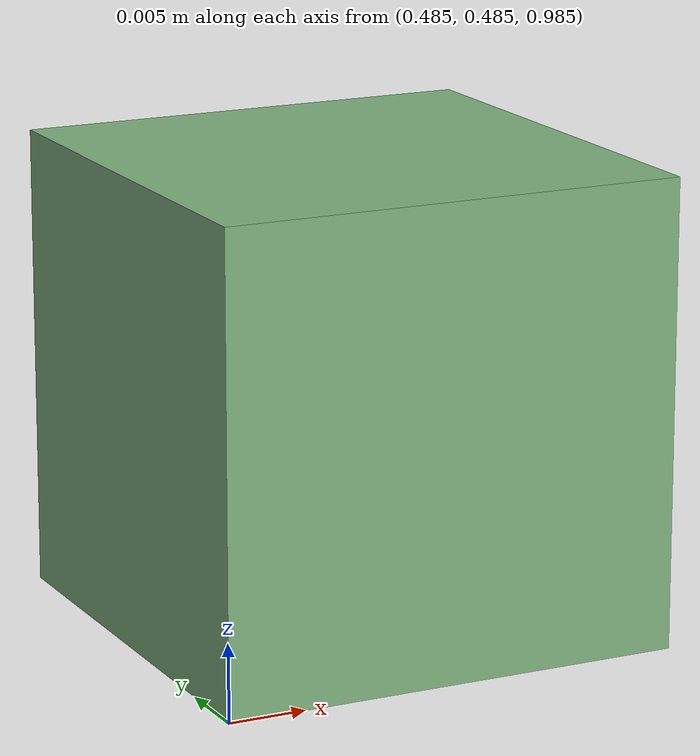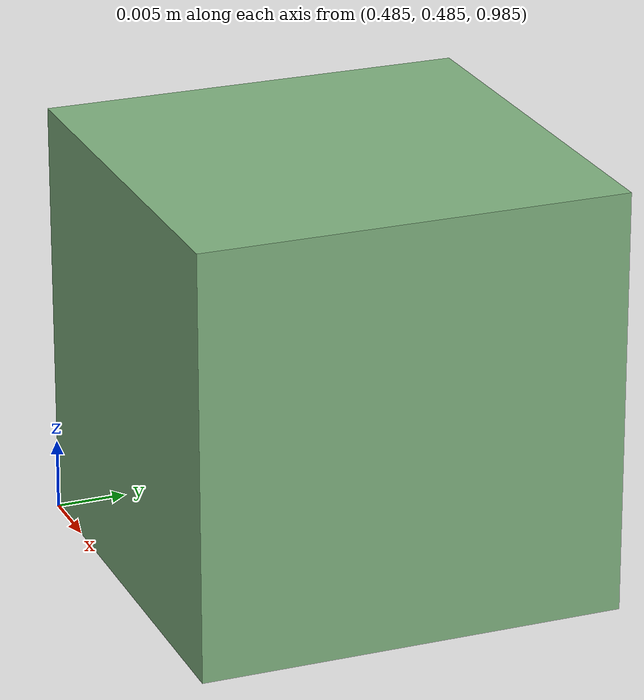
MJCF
<mujoco model="scene test">
	<default>
		<!-- sliding friction, torsional friction, rolling friction -->
		<geom friction="3.0 0.1 0.006"/>
	</default>
	<visual>
		<headlight diffuse="0.6 0.6 0.6" ambient="0.3 0.3 0.3" specular="0 0 0" />
		<rgba haze="0.15 0.25 0.35 1" />
		<global azimuth="150" elevation="-20" />
	</visual>
	<asset>
		<texture type="skybox" builtin="gradient" rgb1="0.3 0.5 0.7" rgb2="0 0 0" width="512" height="3072" />
		<texture type="2d" name="groundplane" builtin="checker" mark="edge" rgb1="0.2 0.3 0.4" rgb2="0.1 0.2 0.3" markrgb="0.8 0.8 0.8" width="300" height="300" />
		<material name="groundplane" texture="groundplane" texuniform="true" texrepeat="5 5" reflectance="0.2" />
	</asset>
	<worldbody>
		<light pos="0 0 3" dir="0 0 -1" directional="false" />
		<body name="floor">
			<geom pos="0 0 0" name="floor" size="0 0 .125" type="plane" material="groundplane" conaffinity="1" contype="1" />
		</body>
		<body name="goal" pos="0.5 0.5 1">
			<freejoint />
			<geom type="box" size="0.015 0.015 0.015" rgba=".5 .7 .5 1" conaffinity="1" contype="1" />
		</body>
	</worldbody>
</mujoco>
